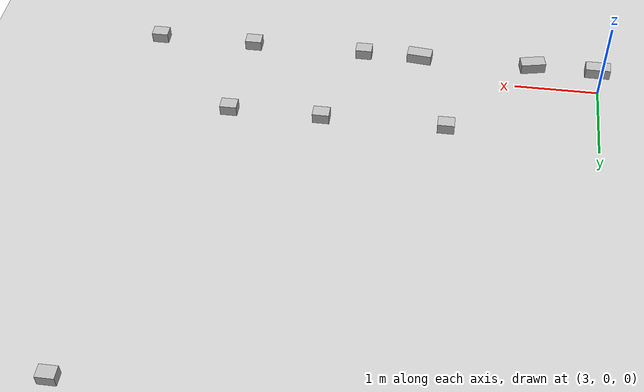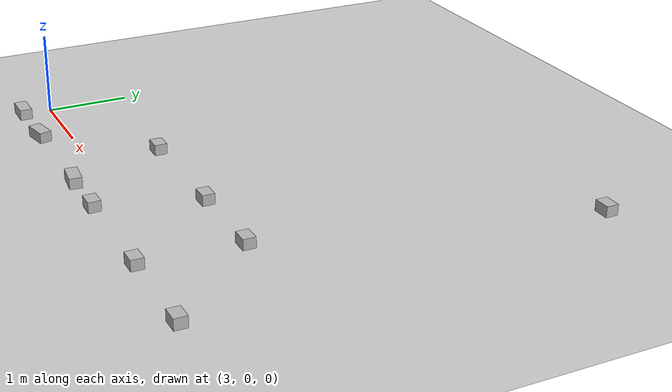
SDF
<?xml version="1.0"?>
<sdf version="1.4">
  <world name="carollo_track_v0">
    <include>
      <uri>model://selfie_description/models/carollo_track_v0</uri>
      <name>track</name>
      <pose>5.74 2.33 0 0 0 0</pose>
    </include>
    <include>
      <uri>model://sun</uri>
      <pose>0 0 10 0 0 0</pose>
      <name>sun</name>
    </include>
    <include>
      <uri>model://selfie_description/models/box_1</uri>
      <name>box1</name>
      <pose>3 -0.35 0.05 0 0 0</pose>
    </include>
    <include>
      <uri>model://selfie_description/models/box_1</uri>
      <name>box2</name>
      <pose>3.8 -0.35 0.05 0 0 0.2</pose>
    </include>
    <include>
      <uri>model://selfie_description/models/box_1</uri>
      <name>box3</name>
      <pose>5.2 -0.35 0.05 0 0 -0.1</pose>
    </include>
    <include>
      <uri>model://selfie_description/models/box</uri>
      <name>box4</name>
      <pose>5.9 -0.35 0.05 0 0 0</pose>
    </include>
    <include>
      <uri>model://selfie_description/models/box</uri>
      <name>box5</name>
      <pose>7.3 -0.35 0.05 0 0 0</pose>
    </include>
    <include>
      <uri>model://selfie_description/models/box</uri>
      <name>box6</name>
      <pose>8.5 -0.35 0.05 0 0 0</pose>
    </include>
    <include>
      <uri>model://selfie_description/models/box</uri>
      <name>box7</name>
      <pose>7.38 0.83 0.05 0 0 0</pose>
    </include>
        <include>
      <uri>model://selfie_description/models/box</uri>
      <name>box8</name>
      <pose>6.27 0.83 0.05 0 0 0</pose>
    </include>
        <include>
      <uri>model://selfie_description/models/box</uri>
      <name>box9</name>
      <pose>4.79 0.82 0.05 0 0 0</pose>
    </include>
        <include>
      <uri>model://selfie_description/models/box</uri>
      <name>box10</name>
      <pose>8.38 4.65 0.05 0 0 0</pose>
    </include>

  </world>
</sdf>

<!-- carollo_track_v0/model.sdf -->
<sdf version="1.4">
  <model name="basic_track_ground_plane">
    <static>true</static>
    <link name="track">
      <collision name="collision">
        <geometry>
          <plane>
            <normal> 0 0 1</normal>
            <size>17.881 9.820</size>
          </plane>
        </geometry>
        <surface>
          <friction>
            <ode>
              <mu>100</mu>
              <mu2>50</mu2>
            </ode>
          </friction>
         </surface>
      </collision>
      <visual name="visual">
        <cast_shadows>false</cast_shadows>
        <geometry>
          <plane>
            <normal>0 0 1</normal>
            <size>17.881 9.820</size>
          </plane>
        </geometry>
        <material>
          <script>
            <uri>model://selfie_description/models/carollo_track_v0/materials/scripts</uri>
            <uri>model://selfie_description/models/carollo_track_v0/materials/textures</uri>
            <name>basic_track/Image</name>
          </script>
        </material>
      </visual>
    </link>
  </model>
</sdf>

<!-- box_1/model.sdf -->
<sdf version="1.4">
<model name="box">
  <pose>0 0 0 0 0 0</pose>
  <static>true</static>
    <link name="link">
      <inertial>
        <mass>1.0</mass>
        <inertia> <!-- inertias are tricky to compute -->
          <!-- http://gazebosim.org/tutorials?tut=inertia&cat=build_robot -->
          <ixx>0.083</ixx>       <!-- for a box: ixx = 0.083 * mass * (y*y + z*z) -->
          <ixy>0.0</ixy>         <!-- for a box: ixy = 0 -->
          <ixz>0.0</ixz>         <!-- for a box: ixz = 0 -->
          <iyy>0.083</iyy>       <!-- for a box: iyy = 0.083 * mass * (x*x + z*z) -->
          <iyz>0.0</iyz>         <!-- for a box: iyz = 0 -->
          <izz>0.083</izz>       <!-- for a box: izz = 0.083 * mass * (x*x + y*y) -->
        </inertia>
      </inertial>
      <collision name="collision">
        <geometry>
          <box>
            <size>0.3 0.15 0.15</size>
          </box>
        </geometry>
      </collision>
      <visual name="visual">
        <material>
          <script>Gazebo/White</script>
        </material>
        <geometry>
          <box>
            <size>0.3 0.15 0.15</size>
          </box>
        </geometry>
      </visual>
    </link>
  </model>
</sdf>

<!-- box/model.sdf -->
<sdf version="1.4">
<model name="box">
  <pose>0 0 0 0 0 0</pose>
  <static>true</static>
    <link name="link">
      <inertial>
        <mass>1.0</mass>
        <inertia> <!-- inertias are tricky to compute -->
          <!-- http://gazebosim.org/tutorials?tut=inertia&cat=build_robot -->
          <ixx>0.083</ixx>       <!-- for a box: ixx = 0.083 * mass * (y*y + z*z) -->
          <ixy>0.0</ixy>         <!-- for a box: ixy = 0 -->
          <ixz>0.0</ixz>         <!-- for a box: ixz = 0 -->
          <iyy>0.083</iyy>       <!-- for a box: iyy = 0.083 * mass * (x*x + z*z) -->
          <iyz>0.0</iyz>         <!-- for a box: iyz = 0 -->
          <izz>0.083</izz>       <!-- for a box: izz = 0.083 * mass * (x*x + y*y) -->
        </inertia>
      </inertial>
      <collision name="collision">
        <geometry>
          <box>
            <size>0.2 0.15 0.15</size>
          </box>
        </geometry>
      </collision>
      <visual name="visual">
        <material>
          <script>Gazebo/White</script>
        </material>
        <geometry>
          <box>
            <size>0.2 0.15 0.15</size>
          </box>
        </geometry>
      </visual>
    </link>
  </model>
</sdf>
